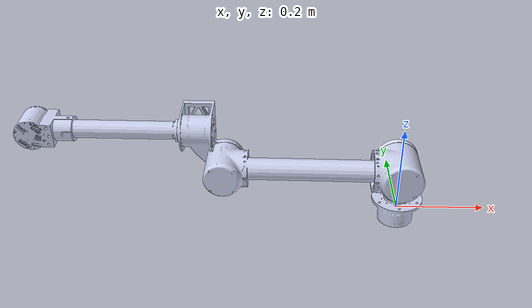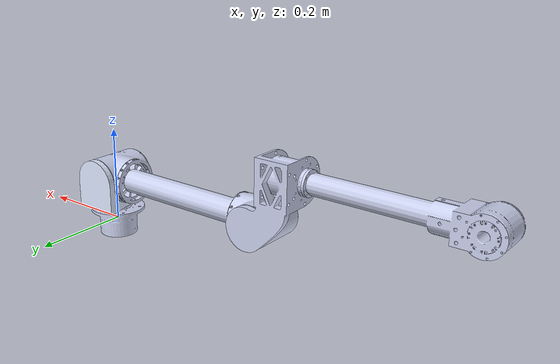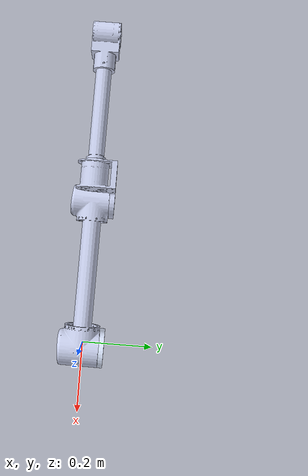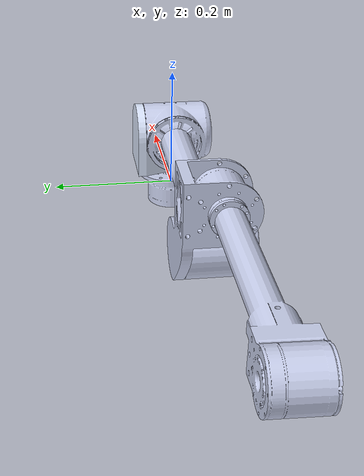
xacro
<?xml version="1.0"?>
<robot xmlns:xacro="http://www.ros.org/wiki/xacro" name="kipp">
    <xacro:arg name="initial_positions_file" default="initial_positions.yaml" />

    <!-- Import kipp urdf file -->
    <xacro:include filename="$(find arm_description)/urdf/robot.urdf.xacro" />

    <!-- Import control_xacro -->
    <xacro:include filename="kipp.ros2_control.xacro" />

    <xacro:kipp_ros2_control name="FakeSystem" initial_positions_file="$(arg initial_positions_file)"/>

</robot>

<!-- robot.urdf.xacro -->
<robot name="kipp" xmlns:xacro="http://www.ros.org/wiki/xacro">

    <!-- THis file doesn't like the common_properties.xacro fle for some reason-->
    <xacro:include filename="arm.xacro" />

</robot>

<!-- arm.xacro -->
<robot name="kipp" xmlns:xacro="http://www.ros.org/wiki/xacro">

  <!-- Material colors -->
    <material name="blue">
        <color rgba="0.796 0.824 0.937 1"/>
    </material>

    <material name="light_blue">
        <color rgba="0.867 0.910 1.0 1"/>
    </material>

  <xacro:property
  name="pkg_share"
  value="$(find arm_description)" />

  <link name="base_link">
    <inertial>
      <origin xyz="-0.00079815 0.0029373 -1.9921E-05" rpy="0 0 0"/>
      <mass value="2"/>
      <inertia
        ixx="0.0002369" ixy="2.2819E-07" ixz="-1.3738E-07"
        iyy="0.0003143" iyz="-1.8676E-07" izz="0.00023727"/>
    </inertial>

    <visual>
      <origin xyz="0 0 0" rpy="0 0 0"/>
      <geometry>
        <mesh filename="file://${pkg_share}/meshes/base_link.STL"/>
      </geometry>
      <material name="blue"/>
    </visual>

    <collision>
      <origin xyz="0 0 0" rpy="0 0 0"/>
      <geometry>
        <mesh filename="file://${pkg_share}/meshes/base_link.STL"/>
      </geometry>
    </collision>
  </link>

  <link name="Link_0">
    <inertial>
      <origin xyz="0.0396837 0.028045 1" rpy="0 0 0"/>
      <mass value="2"/>
      <inertia
        ixx="0.00056310" ixy="-0.00012714" ixz="-1.3669E-09"
        iyy="0.00045357" iyz="-4.1099E-10" izz="0.00049851"/>
    </inertial>

    <visual>
      <origin xyz="0 0 0" rpy="0 0 0"/>
      <geometry>
        <mesh filename="file://${pkg_share}/meshes/Link_0.STL"/>
      </geometry>
      <material name="light_blue"/>
    </visual>

    <collision>
      <origin xyz="0 0 0" rpy="0 0 0"/>
      <geometry>
        <mesh filename="file://${pkg_share}/meshes/Link_0.STL"/>
      </geometry>
    </collision>
  </link>

  <joint name="Amanda" type="revolute">
    <origin xyz="-0.00082643 0 0.03375" rpy="1.5708 0 1.5625"/>
    <parent link="base_link"/>
    <child link="Link_0"/>
    <axis xyz="0 1 0"/>
    <limit lower="-2.7925" upper="3.1416" effort="50" velocity="1.0"/>
  </joint>

  <link name="Link_1">
    <inertial>
      <origin xyz="-0.163682 1.0326E-06 -0.0053131" rpy="0 0 0"/>
      <mass value="2"/>
      <inertia
        ixx="0.0015238" ixy="2.4811E-08" ixz="6.2596E-06"
        iyy="0.0023901" iyz="1.1663E-08" izz="0.0023238"/>
    </inertial>

    <visual>
      <origin xyz="0 0 0" rpy="0 0 0"/>
      <geometry>
        <mesh filename="file://${pkg_share}/meshes/Link_1.STL"/>
      </geometry>
      <material name="blue"/>
    </visual>

    <collision>
      <origin xyz="0 0 0" rpy="0 0 0"/>
      <geometry>
        <mesh filename="file://${pkg_share}/meshes/Link_1.STL"/>
      </geometry>
    </collision>
  </link>

  <joint name="Sosuke" type="revolute">
    <origin xyz="0 0.063 0" rpy="1.5708 -1.5689 -1.5708"/>
    <parent link="Link_0"/>
    <child link="Link_1"/>
    <axis xyz="0 0 1"/>
    <limit lower="-1.5708" upper="3.1416" effort="100" velocity="1.0"/>
  </joint>

  <link name="Link_2">
    <inertial>
      <origin xyz="-0.041346 0.084874 -0.016207" rpy="0 0 0"/>
      <mass value="2"/>
      <inertia
        ixx="0.00051636" ixy="8.1074E-05" ixz="4.0861E-06"
        iyy="0.00031160" iyz="-9.9371E-06" izz="0.00059656"/>
    </inertial>

    <visual>
      <origin xyz="0 0 0" rpy="0 0 0"/>
      <geometry>
        <mesh filename="file://${pkg_share}/meshes/Link_2.STL"/>
      </geometry>
      <material name="blue"/>
    </visual>

    <collision>
      <origin xyz="0 0 0" rpy="0 0 0"/>
      <geometry>
        <mesh filename="file://${pkg_share}/meshes/Link_2.STL"/>
      </geometry>
    </collision>
  </link>

  <joint name="Nathan" type="revolute">
    <origin xyz="-0.396 0 0" rpy="-0.026701 0.01367 0.10983"/>
    <parent link="Link_1"/>
    <child link="Link_2"/>
    <axis xyz="0.013669 0.026695 -0.99955"/>
    <limit lower="-2.4784" upper="2.4784" effort="60" velocity="1.0"/>
  </joint>

  <link name="Link_3">
    <inertial>
      <origin xyz="-0.266602 0.028901 -0.00045148" rpy="0 0 0"/>
      <mass value="2"/>
      <inertia
        ixx="0.00025930" ixy="3.8430E-05" ixz="5.0616E-07"
        iyy="0.00060558" iyz="-1.0770E-07" izz="0.00060899"/>
    </inertial>

    <visual>
      <origin xyz="0 0 0" rpy="0 0 0"/>
      <geometry>
        <mesh filename="file://${pkg_share}/meshes/Link_3.STL"/>
      </geometry>
      <material name="blue"/>
    </visual>

    <collision>
      <origin xyz="0 0 0" rpy="0 0 0"/>
      <geometry>
        <mesh filename="file://${pkg_share}/meshes/Link_3.STL"/>
      </geometry>
    </collision>
  </link>

  <joint name="Henry" type="revolute">
    <origin xyz="-0.079846 0.10435 0.00019439" rpy="0.047996 -0.015976 -0.00026869"/>
    <parent link="Link_2"/>
    <child link="Link_3"/>
    <axis xyz="0.99418 -0.10776 0"/>
    <limit lower="-6.2832" upper="6.2832" effort="20" velocity="1.0"/>
  </joint>

  <link name="Link_4">
    <inertial>
      <origin xyz="-0.028470 -0.036145 -0.021734" rpy="0 0 0"/>
      <mass value="2"/>
      <inertia
        ixx="3.4201E-05" ixy="-7.8453E-06" ixz="-1.5867E-06"
        iyy="4.5315E-05" iyz="-1.3891E-06" izz="6.3441E-05"/>
    </inertial>

    <visual>
      <origin xyz="0 0 0" rpy="0 0 0"/>
      <geometry>
        <mesh filename="file://${pkg_share}/meshes/Link_4.STL"/>
      </geometry>
      <material name="blue"/>
    </visual>

    <collision>
      <origin xyz="0 0 0" rpy="0 0 0"/>
      <geometry>
        <mesh filename="file://${pkg_share}/meshes/Link_4.STL"/>
      </geometry>
    </collision>
  </link>

  <joint name="Indy" type="revolute">
    <origin xyz="-0.32409 0.035127 0" rpy="0 0 -0.024891"/>
    <parent link="Link_3"/>
    <child link="Link_4"/>
    <axis xyz="0 0 1"/>
    <limit lower="-6.2832" upper="6.2832" effort="20" velocity="1.0"/>
  </joint>

  <gazebo>
    <plugin filename="gz-sim-joint-state-publisher-system"
            name="gz::sim::systems::JointStatePublisher">
    </plugin>
  </gazebo>

  <gazebo reference="base_link">
    <material>Gazebo/Blue</material>
    <mu1>0.2</mu1>
    <mu2>0.2</mu2>
  </gazebo>

  <gazebo reference="Link_0">
    <material>Gazebo/SkyBlue</material>
    <mu1>0.2</mu1>
    <mu2>0.2</mu2>
  </gazebo>

  <gazebo reference="Link_1">
    <material>Gazebo/Blue</material>
    <mu1>0.2</mu1>
    <mu2>0.2</mu2>
  </gazebo>

  <gazebo reference="Link_2">
    <material>Gazebo/Blue</material>
    <mu1>0.2</mu1>
    <mu2>0.2</mu2>
  </gazebo>

  <gazebo reference="Link_3">
    <material>Gazebo/Blue</material>
    <mu1>0.2</mu1>
    <mu2>0.2</mu2>
  </gazebo>

  <gazebo reference="Link_4">
    <material>Gazebo/Blue</material>
    <mu1>0.2</mu1>
    <mu2>0.2</mu2>
  </gazebo>

</robot>
